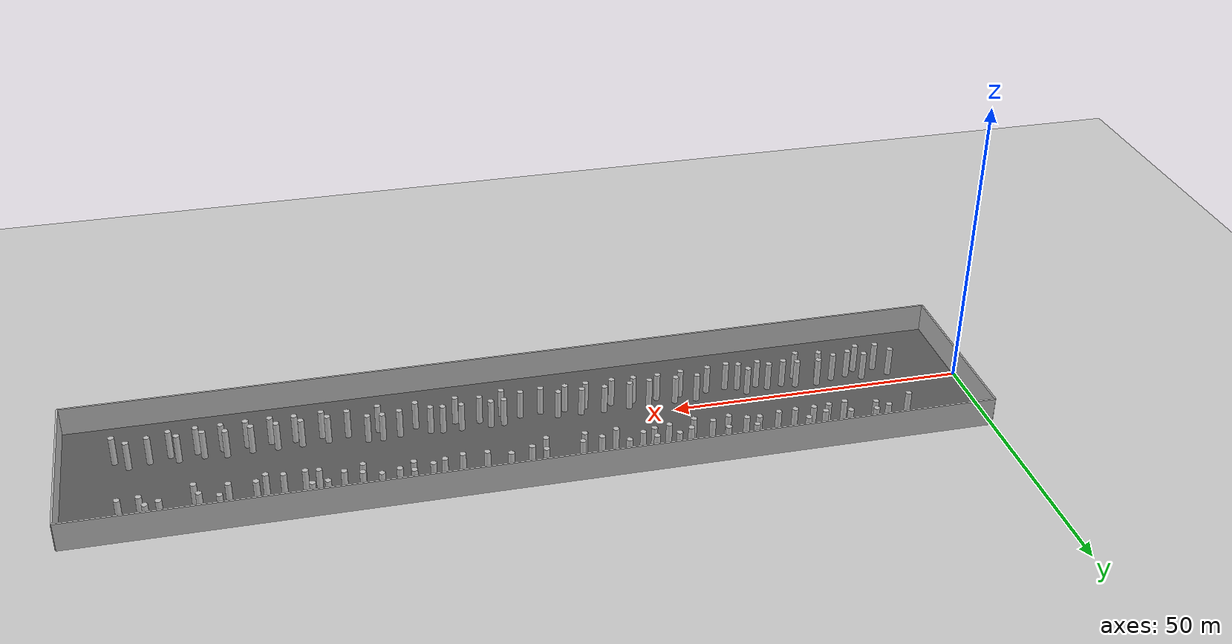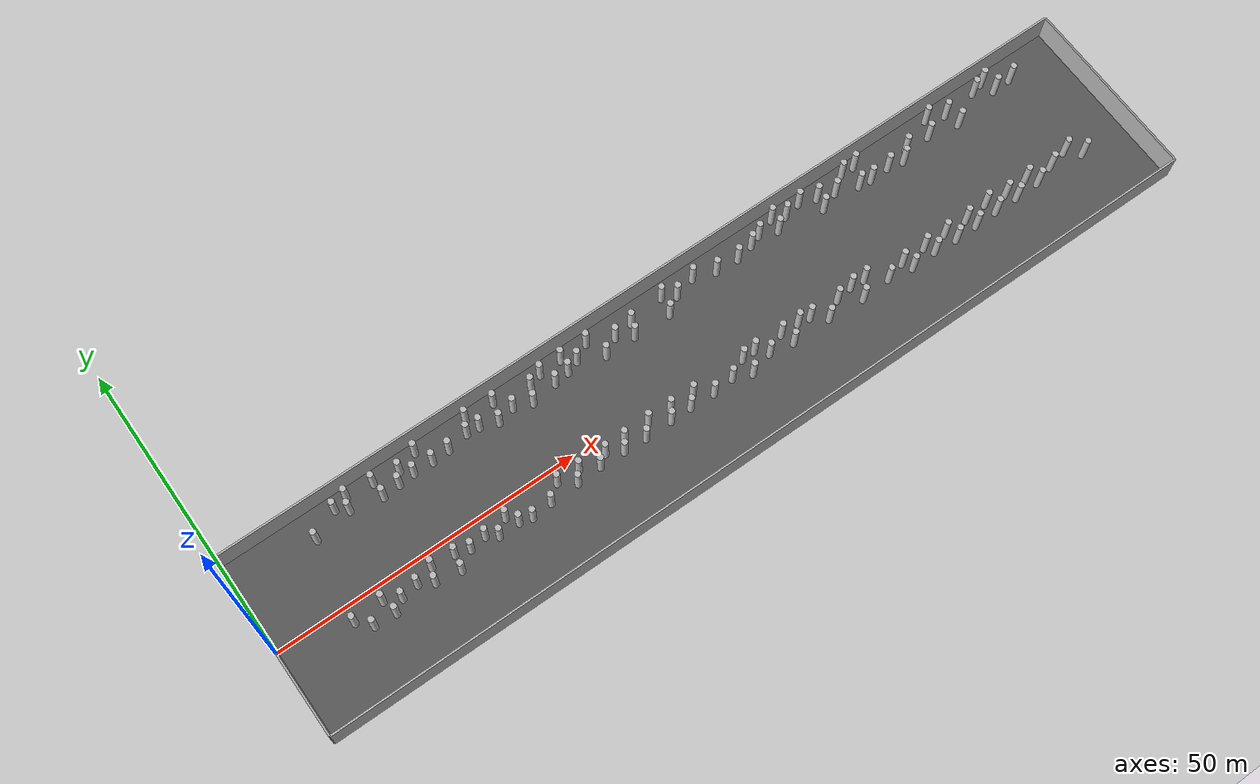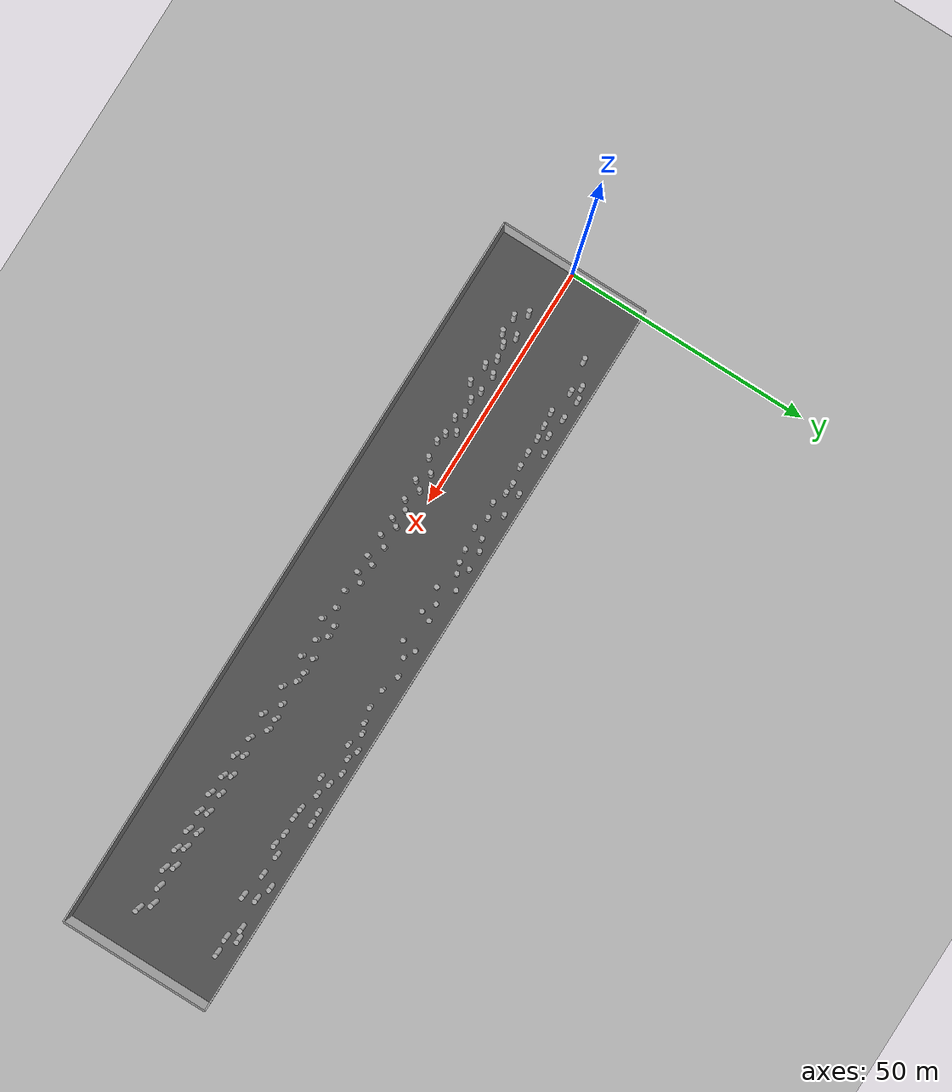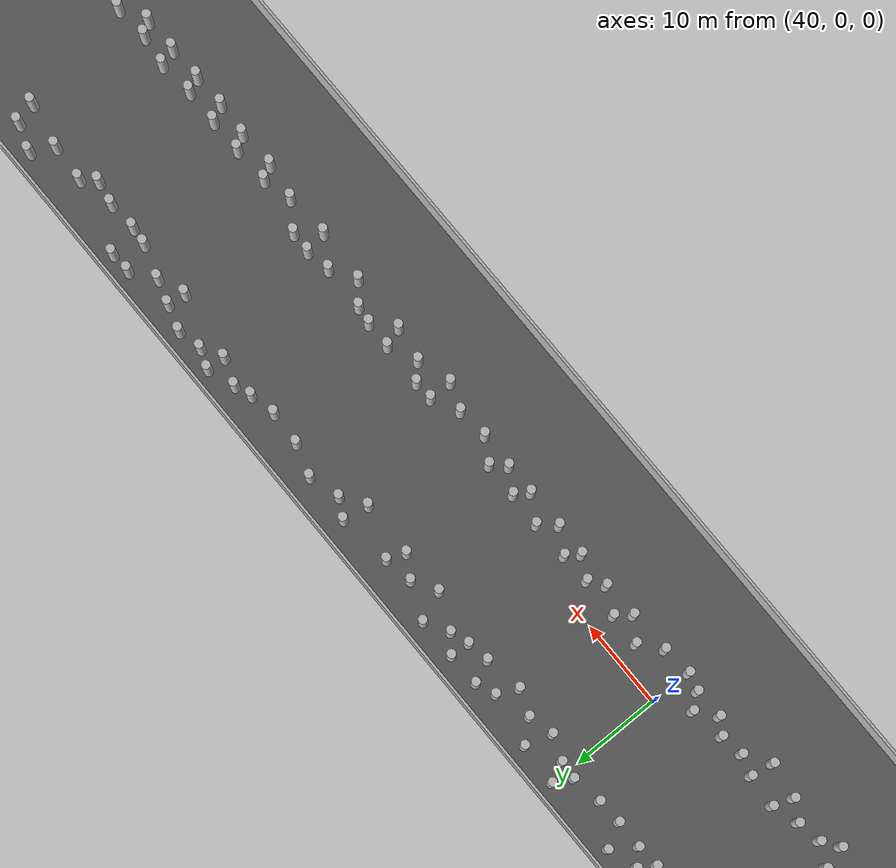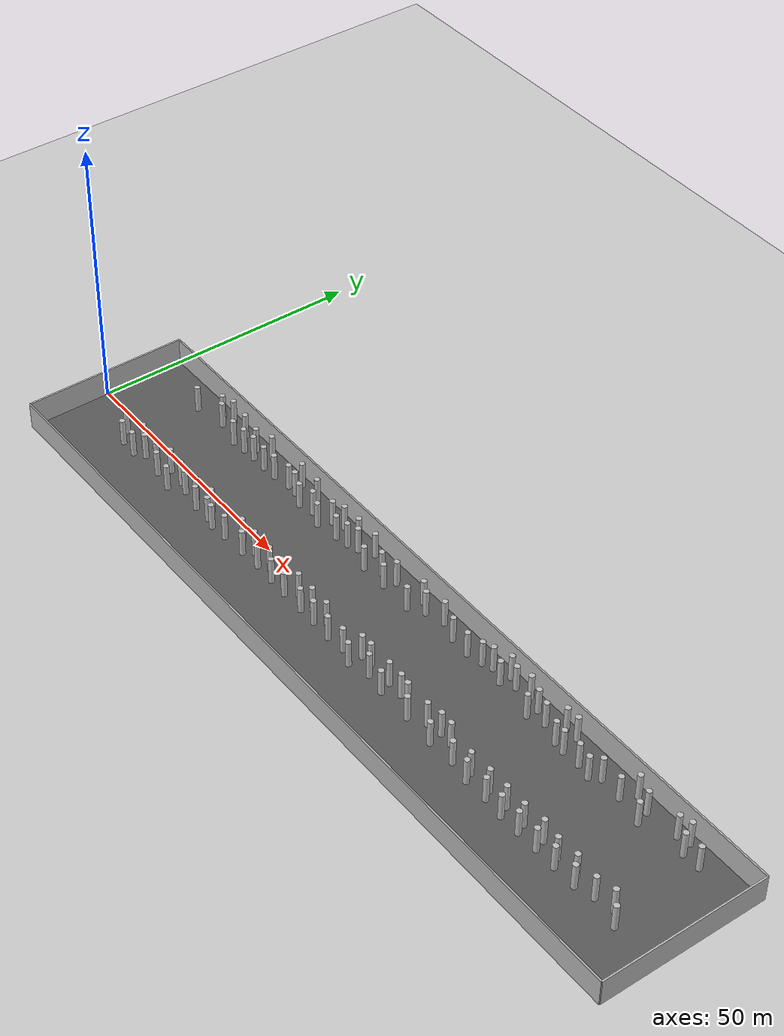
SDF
<?xml version="1.0" ?>
<sdf version="1.5">
  <world name="default">
    <plugin name="gazebo_ros_state" filename="libgazebo_ros_state.so">
      <ros>
        <namespace>/gazebo</namespace>
      </ros>
      <update_rate>20.0</update_rate>
    </plugin>

    <include><uri>model://sun</uri></include>
    <include><uri>model://ground_plane</uri></include>

    <model name="corridor_floor">
      <static>true</static>
      <pose>75 0 0.01 0 0 0</pose>
      <link name="link">
        <collision name="collision">
          <geometry><box><size>150 30 0.02</size></box></geometry>
        </collision>
        <visual name="visual">
          <geometry><box><size>150 30 0.02</size></box></geometry>
          <material>
            <ambient>0.25 0.25 0.25 1</ambient>
            <diffuse>0.35 0.35 0.35 1</diffuse>
          </material>
        </visual>
      </link>
    </model>

    <physics name="default_physics" default="0" type="ode">
      <gravity>0 0 -9.8066</gravity>
      <ode>
        <solver>
          <type>quick</type>
          <iters>10</iters>
          <sor>1.3</sor>
          <use_dynamic_moi_rescaling>0</use_dynamic_moi_rescaling>
        </solver>
        <constraints>
          <cfm>0</cfm>
          <erp>0.2</erp>
          <contact_max_correcting_vel>100</contact_max_correcting_vel>
          <contact_surface_layer>0.001</contact_surface_layer>
        </constraints>
      </ode>
      <max_step_size>0.004</max_step_size>
      <real_time_factor>1</real_time_factor>
      <real_time_update_rate>250</real_time_update_rate>
      <magnetic_field>6.0e-6 2.3e-5 -4.2e-5</magnetic_field>
    </physics>

    <model name="left_wall">
      <static>true</static>
      <pose>75 15.15 2.5 0 0 0</pose>
      <link name="link">
        <collision name="collision">
          <geometry><box><size>150 0.3 5</size></box></geometry>
        </collision>
        <visual name="visual">
          <geometry><box><size>150 0.3 5</size></box></geometry>
        </visual>
      </link>
    </model>

    <model name="right_wall">
      <static>true</static>
      <pose>75 -15.15 2.5 0 0 0</pose>
      <link name="link">
        <collision name="collision">
          <geometry><box><size>150 0.3 5</size></box></geometry>
        </collision>
        <visual name="visual">
          <geometry><box><size>150 0.3 5</size></box></geometry>
        </visual>
      </link>
    </model>

    <model name="start_wall">
      <static>true</static>
      <pose>0 0 2.5 0 0 0</pose>
      <link name="link">
        <collision name="collision">
          <geometry><box><size>0.3 30.3 5</size></box></geometry>
        </collision>
        <visual name="visual">
          <geometry><box><size>0.3 30.3 5</size></box></geometry>
        </visual>
      </link>
    </model>

    <model name="end_wall">
      <static>true</static>
      <pose>150 0 2.5 0 0 0</pose>
      <link name="link">
        <collision name="collision">
          <geometry><box><size>0.3 30.3 5</size></box></geometry>
        </collision>
        <visual name="visual">
          <geometry><box><size>0.3 30.3 5</size></box></geometry>
        </visual>
      </link>
    </model>

    <include><name>cylinder_000</name><uri>model://cylinder_r05_h5</uri><pose>30.160 -3.346 2.5 0 0 0</pose></include>
    <include><name>cylinder_001</name><uri>model://cylinder_r05_h5</uri><pose>36.675 -2.327 2.5 0 0 0</pose></include>
    <include><name>cylinder_002</name><uri>model://cylinder_r05_h5</uri><pose>27.876 -2.637 2.5 0 0 0</pose></include>
    <include><name>cylinder_003</name><uri>model://cylinder_r05_h5</uri><pose>39.918 -4.534 2.5 0 0 0</pose></include>
    <include><name>cylinder_004</name><uri>model://cylinder_r05_h5</uri><pose>21.214 -3.248 2.5 0 0 0</pose></include>
    <include><name>cylinder_005</name><uri>model://cylinder_r05_h5</uri><pose>16.595 -5.019 2.5 0 0 0</pose></include>
    <include><name>cylinder_006</name><uri>model://cylinder_r05_h5</uri><pose>18.436 -3.728 2.5 0 0 0</pose></include>
    <include><name>cylinder_007</name><uri>model://cylinder_r05_h5</uri><pose>15.958 -2.468 2.5 0 0 0</pose></include>
    <include><name>cylinder_008</name><uri>model://cylinder_r05_h5</uri><pose>23.412 -4.522 2.5 0 0 0</pose></include>
    <include><name>cylinder_009</name><uri>model://cylinder_r05_h5</uri><pose>24.192 -2.307 2.5 0 0 0</pose></include>
    <include><name>cylinder_010</name><uri>model://cylinder_r05_h5</uri><pose>34.523 -4.071 2.5 0 0 0</pose></include>
    <include><name>cylinder_011</name><uri>model://cylinder_r05_h5</uri><pose>43.295 -4.210 2.5 0 0 0</pose></include>
    <include><name>cylinder_012</name><uri>model://cylinder_r05_h5</uri><pose>32.833 -2.928 2.5 0 0 0</pose></include>
    <include><name>cylinder_013</name><uri>model://cylinder_r05_h5</uri><pose>27.421 -5.172 2.5 0 0 0</pose></include>
    <include><name>cylinder_014</name><uri>model://cylinder_r05_h5</uri><pose>37.916 -3.984 2.5 0 0 0</pose></include>
    <include><name>cylinder_015</name><uri>model://cylinder_r05_h5</uri><pose>45.637 -2.283 2.5 0 0 0</pose></include>
    <include><name>cylinder_016</name><uri>model://cylinder_r05_h5</uri><pose>48.067 -4.011 2.5 0 0 0</pose></include>
    <include><name>cylinder_017</name><uri>model://cylinder_r05_h5</uri><pose>49.319 -2.391 2.5 0 0 0</pose></include>
    <include><name>cylinder_018</name><uri>model://cylinder_r05_h5</uri><pose>52.143 -3.823 2.5 0 0 0</pose></include>
    <include><name>cylinder_019</name><uri>model://cylinder_r05_h5</uri><pose>53.812 -2.586 2.5 0 0 0</pose></include>
    <include><name>cylinder_020</name><uri>model://cylinder_r05_h5</uri><pose>56.252 -3.938 2.5 0 0 0</pose></include>
    <include><name>cylinder_021</name><uri>model://cylinder_r05_h5</uri><pose>57.263 -2.450 2.5 0 0 0</pose></include>
    <include><name>cylinder_022</name><uri>model://cylinder_r05_h5</uri><pose>59.984 -4.076 2.5 0 0 0</pose></include>
    <include><name>cylinder_023</name><uri>model://cylinder_r05_h5</uri><pose>61.578 -2.324 2.5 0 0 0</pose></include>
    <include><name>cylinder_024</name><uri>model://cylinder_r05_h5</uri><pose>64.477 -4.030 2.5 0 0 0</pose></include>
    <include><name>cylinder_025</name><uri>model://cylinder_r05_h5</uri><pose>65.478 -2.471 2.5 0 0 0</pose></include>
    <include><name>cylinder_026</name><uri>model://cylinder_r05_h5</uri><pose>67.991 -4.004 2.5 0 0 0</pose></include>
    <include><name>cylinder_027</name><uri>model://cylinder_r05_h5</uri><pose>69.409 -2.534 2.5 0 0 0</pose></include>
    <include><name>cylinder_028</name><uri>model://cylinder_r05_h5</uri><pose>72.073 -4.186 2.5 0 0 0</pose></include>
    <include><name>cylinder_029</name><uri>model://cylinder_r05_h5</uri><pose>98.634 -2.344 2.5 0 0 0</pose></include>
    <include><name>cylinder_030</name><uri>model://cylinder_r05_h5</uri><pose>78.579 -4.963 2.5 0 0 0</pose></include>
    <include><name>cylinder_031</name><uri>model://cylinder_r05_h5</uri><pose>86.397 -4.500 2.5 0 0 0</pose></include>
    <include><name>cylinder_032</name><uri>model://cylinder_r05_h5</uri><pose>95.796 -2.804 2.5 0 0 0</pose></include>
    <include><name>cylinder_033</name><uri>model://cylinder_r05_h5</uri><pose>80.787 -2.249 2.5 0 0 0</pose></include>
    <include><name>cylinder_034</name><uri>model://cylinder_r05_h5</uri><pose>104.114 -4.522 2.5 0 0 0</pose></include>
    <include><name>cylinder_035</name><uri>model://cylinder_r05_h5</uri><pose>82.448 -3.838 2.5 0 0 0</pose></include>
    <include><name>cylinder_036</name><uri>model://cylinder_r05_h5</uri><pose>88.728 -2.415 2.5 0 0 0</pose></include>
    <include><name>cylinder_037</name><uri>model://cylinder_r05_h5</uri><pose>90.744 -2.722 2.5 0 0 0</pose></include>
    <include><name>cylinder_038</name><uri>model://cylinder_r05_h5</uri><pose>75.592 -3.847 2.5 0 0 0</pose></include>
    <include><name>cylinder_039</name><uri>model://cylinder_r05_h5</uri><pose>101.062 -2.463 2.5 0 0 0</pose></include>
    <include><name>cylinder_040</name><uri>model://cylinder_r05_h5</uri><pose>85.663 -2.372 2.5 0 0 0</pose></include>
    <include><name>cylinder_041</name><uri>model://cylinder_r05_h5</uri><pose>78.606 -2.316 2.5 0 0 0</pose></include>
    <include><name>cylinder_042</name><uri>model://cylinder_r05_h5</uri><pose>99.098 -4.871 2.5 0 0 0</pose></include>
    <include><name>cylinder_043</name><uri>model://cylinder_r05_h5</uri><pose>92.987 -4.507 2.5 0 0 0</pose></include>
    <include><name>cylinder_044</name><uri>model://cylinder_r05_h5</uri><pose>107.389 -3.659 2.5 0 0 0</pose></include>
    <include><name>cylinder_045</name><uri>model://cylinder_r05_h5</uri><pose>108.252 -5.163 2.5 0 0 0</pose></include>
    <include><name>cylinder_046</name><uri>model://cylinder_r05_h5</uri><pose>111.646 -3.545 2.5 0 0 0</pose></include>
    <include><name>cylinder_047</name><uri>model://cylinder_r05_h5</uri><pose>112.610 -4.991 2.5 0 0 0</pose></include>
    <include><name>cylinder_048</name><uri>model://cylinder_r05_h5</uri><pose>115.593 -3.544 2.5 0 0 0</pose></include>
    <include><name>cylinder_049</name><uri>model://cylinder_r05_h5</uri><pose>116.499 -5.274 2.5 0 0 0</pose></include>
    <include><name>cylinder_050</name><uri>model://cylinder_r05_h5</uri><pose>119.657 -3.622 2.5 0 0 0</pose></include>
    <include><name>cylinder_051</name><uri>model://cylinder_r05_h5</uri><pose>120.370 -5.195 2.5 0 0 0</pose></include>
    <include><name>cylinder_052</name><uri>model://cylinder_r05_h5</uri><pose>123.715 -3.250 2.5 0 0 0</pose></include>
    <include><name>cylinder_053</name><uri>model://cylinder_r05_h5</uri><pose>124.317 -5.100 2.5 0 0 0</pose></include>
    <include><name>cylinder_054</name><uri>model://cylinder_r05_h5</uri><pose>127.293 -3.728 2.5 0 0 0</pose></include>
    <include><name>cylinder_055</name><uri>model://cylinder_r05_h5</uri><pose>128.342 -5.103 2.5 0 0 0</pose></include>
    <include><name>cylinder_056</name><uri>model://cylinder_r05_h5</uri><pose>131.329 -3.527 2.5 0 0 0</pose></include>
    <include><name>cylinder_057</name><uri>model://cylinder_r05_h5</uri><pose>132.602 -5.007 2.5 0 0 0</pose></include>
    <include><name>cylinder_058</name><uri>model://cylinder_r05_h5</uri><pose>11.113 -2.810 2.5 0 0 0</pose></include>
    <include><name>cylinder_059</name><uri>model://cylinder_r05_h5</uri><pose>13.094 -4.817 2.5 0 0 0</pose></include>
    <include><name>cylinder_060</name><uri>model://cylinder_r05_h5</uri><pose>139.241 -3.284 2.5 0 0 0</pose></include>
    <include><name>cylinder_061</name><uri>model://cylinder_r05_h5</uri><pose>135.925 -4.023 2.5 0 0 0</pose></include>
    <include><name>cylinder_062</name><uri>model://cylinder_r05_h5</uri><pose>141.426 -5.147 2.5 0 0 0</pose></include>
    <include><name>cylinder_063</name><uri>model://cylinder_r05_h5</uri><pose>137.383 11.243 2.5 0 0 0</pose></include>
    <include><name>cylinder_064</name><uri>model://cylinder_r05_h5</uri><pose>95.669 13.467 2.5 0 0 0</pose></include>
    <include><name>cylinder_065</name><uri>model://cylinder_r05_h5</uri><pose>83.846 11.312 2.5 0 0 0</pose></include>
    <include><name>cylinder_066</name><uri>model://cylinder_r05_h5</uri><pose>103.289 10.292 2.5 0 0 0</pose></include>
    <include><name>cylinder_067</name><uri>model://cylinder_r05_h5</uri><pose>44.910 13.119 2.5 0 0 0</pose></include>
    <include><name>cylinder_068</name><uri>model://cylinder_r05_h5</uri><pose>67.817 9.796 2.5 0 0 0</pose></include>
    <include><name>cylinder_069</name><uri>model://cylinder_r05_h5</uri><pose>29.707 10.764 2.5 0 0 0</pose></include>
    <include><name>cylinder_070</name><uri>model://cylinder_r05_h5</uri><pose>19.866 13.349 2.5 0 0 0</pose></include>
    <include><name>cylinder_071</name><uri>model://cylinder_r05_h5</uri><pose>110.088 10.265 2.5 0 0 0</pose></include>
    <include><name>cylinder_072</name><uri>model://cylinder_r05_h5</uri><pose>17.522 12.654 2.5 0 0 0</pose></include>
    <include><name>cylinder_073</name><uri>model://cylinder_r05_h5</uri><pose>90.657 11.728 2.5 0 0 0</pose></include>
    <include><name>cylinder_074</name><uri>model://cylinder_r05_h5</uri><pose>58.631 11.503 2.5 0 0 0</pose></include>
    <include><name>cylinder_075</name><uri>model://cylinder_r05_h5</uri><pose>134.410 12.771 2.5 0 0 0</pose></include>
    <include><name>cylinder_076</name><uri>model://cylinder_r05_h5</uri><pose>128.447 12.230 2.5 0 0 0</pose></include>
    <include><name>cylinder_077</name><uri>model://cylinder_r05_h5</uri><pose>39.187 11.384 2.5 0 0 0</pose></include>
    <include><name>cylinder_078</name><uri>model://cylinder_r05_h5</uri><pose>129.180 9.847 2.5 0 0 0</pose></include>
    <include><name>cylinder_079</name><uri>model://cylinder_r05_h5</uri><pose>49.734 9.755 2.5 0 0 0</pose></include>
    <include><name>cylinder_080</name><uri>model://cylinder_r05_h5</uri><pose>61.279 13.020 2.5 0 0 0</pose></include>
    <include><name>cylinder_081</name><uri>model://cylinder_r05_h5</uri><pose>74.620 12.606 2.5 0 0 0</pose></include>
    <include><name>cylinder_082</name><uri>model://cylinder_r05_h5</uri><pose>54.053 10.423 2.5 0 0 0</pose></include>
    <include><name>cylinder_083</name><uri>model://cylinder_r05_h5</uri><pose>28.216 12.274 2.5 0 0 0</pose></include>
    <include><name>cylinder_084</name><uri>model://cylinder_r05_h5</uri><pose>40.245 13.391 2.5 0 0 0</pose></include>
    <include><name>cylinder_085</name><uri>model://cylinder_r05_h5</uri><pose>27.110 10.571 2.5 0 0 0</pose></include>
    <include><name>cylinder_086</name><uri>model://cylinder_r05_h5</uri><pose>123.985 10.830 2.5 0 0 0</pose></include>
    <include><name>cylinder_087</name><uri>model://cylinder_r05_h5</uri><pose>41.261 11.217 2.5 0 0 0</pose></include>
    <include><name>cylinder_088</name><uri>model://cylinder_r05_h5</uri><pose>65.348 11.290 2.5 0 0 0</pose></include>
    <include><name>cylinder_089</name><uri>model://cylinder_r05_h5</uri><pose>95.507 11.371 2.5 0 0 0</pose></include>
    <include><name>cylinder_090</name><uri>model://cylinder_r05_h5</uri><pose>56.743 12.989 2.5 0 0 0</pose></include>
    <include><name>cylinder_091</name><uri>model://cylinder_r05_h5</uri><pose>115.544 10.215 2.5 0 0 0</pose></include>
    <include><name>cylinder_092</name><uri>model://cylinder_r05_h5</uri><pose>31.490 13.344 2.5 0 0 0</pose></include>
    <include><name>cylinder_093</name><uri>model://cylinder_r05_h5</uri><pose>112.180 10.040 2.5 0 0 0</pose></include>
    <include><name>cylinder_094</name><uri>model://cylinder_r05_h5</uri><pose>103.537 12.328 2.5 0 0 0</pose></include>
    <include><name>cylinder_095</name><uri>model://cylinder_r05_h5</uri><pose>140.576 11.392 2.5 0 0 0</pose></include>
    <include><name>cylinder_096</name><uri>model://cylinder_r05_h5</uri><pose>32.881 10.686 2.5 0 0 0</pose></include>
    <include><name>cylinder_097</name><uri>model://cylinder_r05_h5</uri><pose>92.547 12.424 2.5 0 0 0</pose></include>
    <include><name>cylinder_098</name><uri>model://cylinder_r05_h5</uri><pose>52.990 12.880 2.5 0 0 0</pose></include>
    <include><name>cylinder_099</name><uri>model://cylinder_r05_h5</uri><pose>87.716 11.100 2.5 0 0 0</pose></include>
    <include><name>cylinder_100</name><uri>model://cylinder_r05_h5</uri><pose>106.326 11.441 2.5 0 0 0</pose></include>
    <include><name>cylinder_101</name><uri>model://cylinder_r05_h5</uri><pose>62.647 9.747 2.5 0 0 0</pose></include>
    <include><name>cylinder_102</name><uri>model://cylinder_r05_h5</uri><pose>80.242 12.466 2.5 0 0 0</pose></include>
    <include><name>cylinder_103</name><uri>model://cylinder_r05_h5</uri><pose>44.035 10.143 2.5 0 0 0</pose></include>
    <include><name>cylinder_104</name><uri>model://cylinder_r05_h5</uri><pose>97.833 12.657 2.5 0 0 0</pose></include>
    <include><name>cylinder_105</name><uri>model://cylinder_r05_h5</uri><pose>100.665 13.227 2.5 0 0 0</pose></include>
    <include><name>cylinder_106</name><uri>model://cylinder_r05_h5</uri><pose>119.748 11.119 2.5 0 0 0</pose></include>
    <include><name>cylinder_107</name><uri>model://cylinder_r05_h5</uri><pose>24.275 10.315 2.5 0 0 0</pose></include>
    <include><name>cylinder_108</name><uri>model://cylinder_r05_h5</uri><pose>24.129 12.873 2.5 0 0 0</pose></include>
    <include><name>cylinder_109</name><uri>model://cylinder_r05_h5</uri><pose>56.586 10.823 2.5 0 0 0</pose></include>
    <include><name>cylinder_110</name><uri>model://cylinder_r05_h5</uri><pose>46.873 10.856 2.5 0 0 0</pose></include>
    <include><name>cylinder_111</name><uri>model://cylinder_r05_h5</uri><pose>76.708 11.454 2.5 0 0 0</pose></include>
    <include><name>cylinder_112</name><uri>model://cylinder_r05_h5</uri><pose>19.229 11.390 2.5 0 0 0</pose></include>
    <include><name>cylinder_113</name><uri>model://cylinder_r05_h5</uri><pose>111.367 13.401 2.5 0 0 0</pose></include>
    <include><name>cylinder_114</name><uri>model://cylinder_r05_h5</uri><pose>108.975 13.333 2.5 0 0 0</pose></include>
    <include><name>cylinder_115</name><uri>model://cylinder_r05_h5</uri><pose>13.110 10.396 2.5 0 0 0</pose></include>
    <include><name>cylinder_116</name><uri>model://cylinder_r05_h5</uri><pose>74.101 9.707 2.5 0 0 0</pose></include>
    <include><name>cylinder_117</name><uri>model://cylinder_r05_h5</uri><pose>50.805 12.024 2.5 0 0 0</pose></include>
    <include><name>cylinder_118</name><uri>model://cylinder_r05_h5</uri><pose>136.471 13.358 2.5 0 0 0</pose></include>
    <include><name>cylinder_119</name><uri>model://cylinder_r05_h5</uri><pose>125.376 13.300 2.5 0 0 0</pose></include>
    <include><name>cylinder_120</name><uri>model://cylinder_r05_h5</uri><pose>68.586 11.827 2.5 0 0 0</pose></include>
    <include><name>cylinder_121</name><uri>model://cylinder_r05_h5</uri><pose>118.249 9.709 2.5 0 0 0</pose></include>
    <include><name>cylinder_122</name><uri>model://cylinder_r05_h5</uri><pose>35.745 10.830 2.5 0 0 0</pose></include>

  </world>
</sdf>

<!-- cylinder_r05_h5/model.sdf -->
<sdf version="1.5">
  <model name="cylinder_r05_h5">
    <static>true</static>
    <link name="link">
      <collision name="collision">
        <geometry>
          <cylinder>
            <radius>0.5</radius>
            <length>5</length>
          </cylinder>
        </geometry>
      </collision>
      <visual name="visual">
        <geometry>
          <cylinder>
            <radius>0.5</radius>
            <length>5</length>
          </cylinder>
        </geometry>
        <material>
          <ambient>0.5 0.5 0.5 1</ambient>
          <diffuse>0.75 0.75 0.75 1</diffuse>
        </material>
      </visual>
    </link>
  </model>
</sdf>
